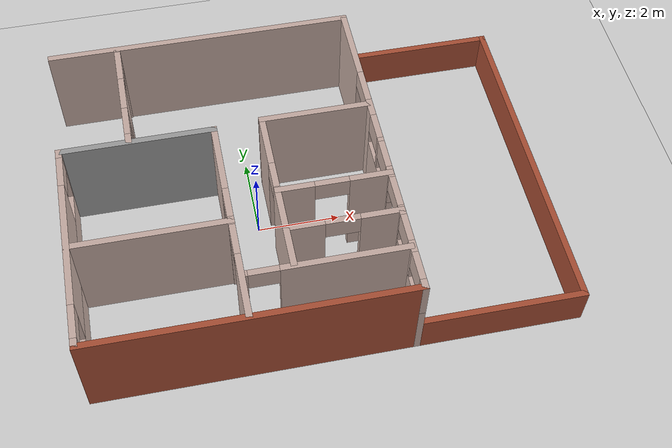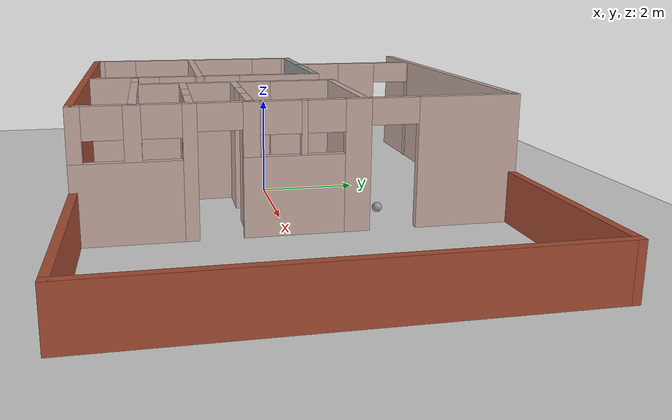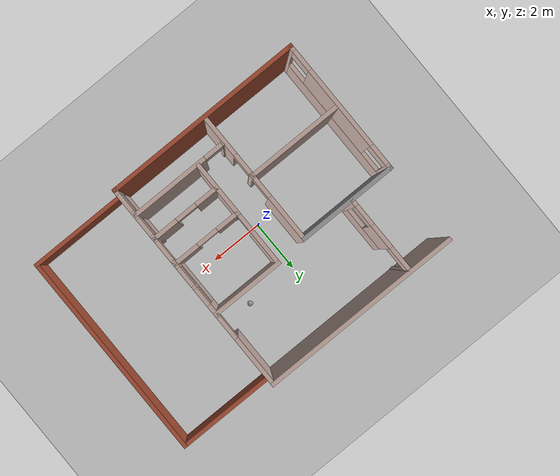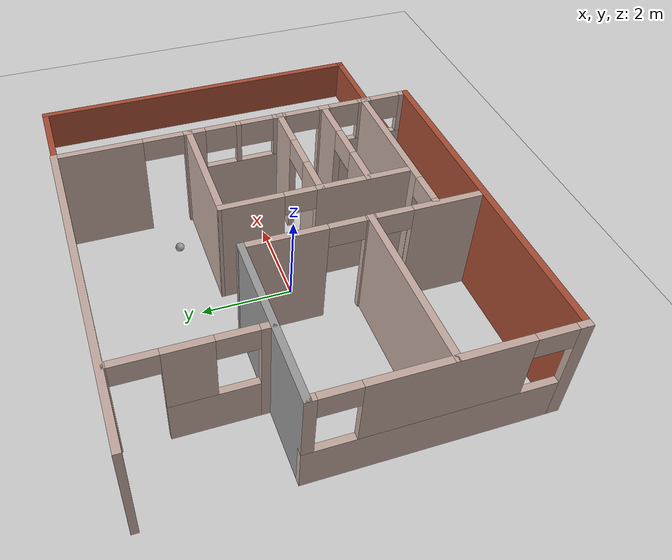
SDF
<sdf version="1.6">
 <world name="default">
  <include><uri>model://ground_plane</uri></include>
  <include><uri>model://sun</uri></include>
  <include><uri>model://Building</uri></include>
  <include><pose>2.0 2.0 0.1 0 0 0</pose><uri>model://ball</uri></include>
 </world>
</sdf>

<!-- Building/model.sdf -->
<sdf version='1.6'>
  <model name='Building'>
    <pose frame=''>1.24591 0.271 0 0 -0 0</pose>

    <link name='Wall_52'>
      <collision name='Wall_52_Collision'>
        <geometry>
          <box>
            <size>7.5 0.15 2.5</size>
          </box>
        </geometry>
        <pose frame=''>0 0 1.25 0 -0 0</pose>
      </collision>
      <visual name='Wall_52_Visual'>
        <pose frame=''>0 0 1.25 0 -0 0</pose>
        <geometry>
          <box>
            <size>7.5 0.15 2.5</size>
          </box>
        </geometry>
        <material>
          <script>
            <uri>file://media/materials/scripts/gazebo.material</uri>
            <name>Gazebo/Grey</name>
          </script>
          <ambient>0.760784 0.662745 0.627451 1</ambient>
        </material>
      </visual>
      <pose frame=''>-1.925 4.05 0 0 -0 0</pose>
    </link>
    <link name='Wall_53'>
      <pose frame=''>1.75009 0 0 0 0 -1.5708</pose>
      <visual name='Wall_53_Visual_0'>
        <pose frame=''>-3.1376 0 1.25 0 -0 0</pose>
        <geometry>
          <box>
            <size>1.9748 0.15 2.5</size>
          </box>
        </geometry>
        <material>
          <script>
            <uri>file://media/materials/scripts/gazebo.material</uri>
            <name>Gazebo/Grey</name>
          </script>
          <ambient>0.760784 0.662745 0.627451 1</ambient>
        </material>
      </visual>
      <collision name='Wall_53_Collision_0'>
        <geometry>
          <box>
            <size>1.9748 0.15 2.5</size>
          </box>
        </geometry>
        <pose frame=''>-3.1376 0 1.25 0 -0 0</pose>
      </collision>
      <visual name='Wall_53_Visual_1'>
        <pose frame=''>-1.00489 0 1.25 0 -0 0</pose>
        <geometry>
          <box>
            <size>0.490612 0.15 2.5</size>
          </box>
        </geometry>
        <material>
          <script>
            <uri>file://media/materials/scripts/gazebo.material</uri>
            <name>Gazebo/Grey</name>
          </script>
          <ambient>0.760784 0.662745 0.627451 1</ambient>
        </material>
      </visual>
      <collision name='Wall_53_Collision_1'>
        <geometry>
          <box>
            <size>0.490612 0.15 2.5</size>
          </box>
        </geometry>
        <pose frame=''>-1.00489 0 1.25 0 -0 0</pose>
      </collision>
      <visual name='Wall_53_Visual_2'>
        <pose frame=''>2.03288 0 1.25 0 -0 0</pose>
        <geometry>
          <box>
            <size>0.255222 0.15 2.5</size>
          </box>
        </geometry>
        <material>
          <script>
            <uri>file://media/materials/scripts/gazebo.material</uri>
            <name>Gazebo/Grey</name>
          </script>
          <ambient>0.760784 0.662745 0.627451 1</ambient>
        </material>
      </visual>
      <collision name='Wall_53_Collision_2'>
        <geometry>
          <box>
            <size>0.255222 0.15 2.5</size>
          </box>
        </geometry>
        <pose frame=''>2.03288 0 1.25 0 -0 0</pose>
      </collision>
      <visual name='Wall_53_Visual_3'>
        <pose frame=''>0.172843 0 0.75 0 -0 0</pose>
        <geometry>
          <box>
            <size>1.86486 0.15 1.5</size>
          </box>
        </geometry>
        <material>
          <script>
            <uri>file://media/materials/scripts/gazebo.material</uri>
            <name>Gazebo/Grey</name>
          </script>
          <ambient>0.760784 0.662745 0.627451 1</ambient>
        </material>
      </visual>
      <collision name='Wall_53_Collision_3'>
        <geometry>
          <box>
            <size>1.86486 0.15 1.5</size>
          </box>
        </geometry>
        <pose frame=''>0.172843 0 0.75 0 -0 0</pose>
      </collision>
      <visual name='Wall_53_Visual_4'>
        <pose frame=''>3.14275 0 0.75 0 -0 0</pose>
        <geometry>
          <box>
            <size>1.96451 0.15 1.5</size>
          </box>
        </geometry>
        <material>
          <script>
            <uri>file://media/materials/scripts/gazebo.material</uri>
            <name>Gazebo/Grey</name>
          </script>
          <ambient>0.760784 0.662745 0.627451 1</ambient>
        </material>
      </visual>
      <collision name='Wall_53_Collision_4'>
        <geometry>
          <box>
            <size>1.96451 0.15 1.5</size>
          </box>
        </geometry>
        <pose frame=''>3.14275 0 0.75 0 -0 0</pose>
      </collision>
      <visual name='Wall_53_Visual_5'>
        <pose frame=''>-0.003846 0 2 0 -0 0</pose>
        <geometry>
          <box>
            <size>0.111481 0.15 1</size>
          </box>
        </geometry>
        <material>
          <script>
            <uri>file://media/materials/scripts/gazebo.material</uri>
            <name>Gazebo/Grey</name>
          </script>
          <ambient>0.760784 0.662745 0.627451 1</ambient>
        </material>
      </visual>
      <collision name='Wall_53_Collision_5'>
        <geometry>
          <box>
            <size>0.111481 0.15 1</size>
          </box>
        </geometry>
        <pose frame=''>-0.003846 0 2 0 -0 0</pose>
      </collision>
      <visual name='Wall_53_Visual_6'>
        <pose frame=''>0.953584 0 2 0 -0 0</pose>
        <geometry>
          <box>
            <size>0.303377 0.15 1</size>
          </box>
        </geometry>
        <material>
          <script>
            <uri>file://media/materials/scripts/gazebo.material</uri>
            <name>Gazebo/Grey</name>
          </script>
          <ambient>0.760784 0.662745 0.627451 1</ambient>
        </material>
      </visual>
      <collision name='Wall_53_Collision_6'>
        <geometry>
          <box>
            <size>0.303377 0.15 1</size>
          </box>
        </geometry>
        <pose frame=''>0.953584 0 2 0 -0 0</pose>
      </collision>
      <visual name='Wall_53_Visual_7'>
        <pose frame=''>0.953584 0 2 0 -0 0</pose>
        <geometry>
          <box>
            <size>0.303377 0.15 1</size>
          </box>
        </geometry>
        <material>
          <script>
            <uri>file://media/materials/scripts/gazebo.material</uri>
            <name>Gazebo/Grey</name>
          </script>
          <ambient>0.760784 0.662745 0.627451 1</ambient>
        </material>
      </visual>
      <collision name='Wall_53_Collision_7'>
        <geometry>
          <box>
            <size>0.303377 0.15 1</size>
          </box>
        </geometry>
        <pose frame=''>0.953584 0 2 0 -0 0</pose>
      </collision>
      <visual name='Wall_53_Visual_8'>
        <pose frame=''>3.01238 0 2 0 -0 0</pose>
        <geometry>
          <box>
            <size>0.303778 0.15 1</size>
          </box>
        </geometry>
        <material>
          <script>
            <uri>file://media/materials/scripts/gazebo.material</uri>
            <name>Gazebo/Grey</name>
          </script>
          <ambient>0.760784 0.662745 0.627451 1</ambient>
        </material>
      </visual>
      <collision name='Wall_53_Collision_8'>
        <geometry>
          <box>
            <size>0.303778 0.15 1</size>
          </box>
        </geometry>
        <pose frame=''>3.01238 0 2 0 -0 0</pose>
      </collision>
      <visual name='Wall_53_Visual_9'>
        <pose frame=''>3.99464 0 2 0 -0 0</pose>
        <geometry>
          <box>
            <size>0.260729 0.15 1</size>
          </box>
        </geometry>
        <material>
          <script>
            <uri>file://media/materials/scripts/gazebo.material</uri>
            <name>Gazebo/Grey</name>
          </script>
          <ambient>0.760784 0.662745 0.627451 1</ambient>
        </material>
      </visual>
      <collision name='Wall_53_Collision_9'>
        <geometry>
          <box>
            <size>0.260729 0.15 1</size>
          </box>
        </geometry>
        <pose frame=''>3.99464 0 2 0 -0 0</pose>
      </collision>
      <visual name='Wall_53_Visual_10'>
        <pose frame=''>-0.409586 0 2.2 0 -0 0</pose>
        <geometry>
          <box>
            <size>0.7 0.15 0.6</size>
          </box>
        </geometry>
        <material>
          <script>
            <uri>file://media/materials/scripts/gazebo.material</uri>
            <name>Gazebo/Grey</name>
          </script>
          <ambient>0.760784 0.662745 0.627451 1</ambient>
        </material>
      </visual>
      <collision name='Wall_53_Collision_10'>
        <geometry>
          <box>
            <size>0.7 0.15 0.6</size>
          </box>
        </geometry>
        <pose frame=''>-0.409586 0 2.2 0 -0 0</pose>
      </collision>
      <visual name='Wall_53_Visual_11'>
        <pose frame=''>2.51049 0 2.2 0 -0 0</pose>
        <geometry>
          <box>
            <size>0.7 0.15 0.6</size>
          </box>
        </geometry>
        <material>
          <script>
            <uri>file://media/materials/scripts/gazebo.material</uri>
            <name>Gazebo/Grey</name>
          </script>
          <ambient>0.760784 0.662745 0.627451 1</ambient>
        </material>
      </visual>
      <collision name='Wall_53_Collision_11'>
        <geometry>
          <box>
            <size>0.7 0.15 0.6</size>
          </box>
        </geometry>
        <pose frame=''>2.51049 0 2.2 0 -0 0</pose>
      </collision>
      <visual name='Wall_53_Visual_12'>
        <pose frame=''>0.426895 0 2.2 0 -0 0</pose>
        <geometry>
          <box>
            <size>0.75 0.15 0.6</size>
          </box>
        </geometry>
        <material>
          <script>
            <uri>file://media/materials/scripts/gazebo.material</uri>
            <name>Gazebo/Grey</name>
          </script>
          <ambient>0.760784 0.662745 0.627451 1</ambient>
        </material>
      </visual>
      <collision name='Wall_53_Collision_12'>
        <geometry>
          <box>
            <size>0.75 0.15 0.6</size>
          </box>
        </geometry>
        <pose frame=''>0.426895 0 2.2 0 -0 0</pose>
      </collision>
      <visual name='Wall_53_Visual_13'>
        <pose frame=''>3.51427 0 2.2 0 -0 0</pose>
        <geometry>
          <box>
            <size>0.7 0.15 0.6</size>
          </box>
        </geometry>
        <material>
          <script>
            <uri>file://media/materials/scripts/gazebo.material</uri>
            <name>Gazebo/Grey</name>
          </script>
          <ambient>0.760784 0.662745 0.627451 1</ambient>
        </material>
      </visual>
      <collision name='Wall_53_Collision_13'>
        <geometry>
          <box>
            <size>0.7 0.15 0.6</size>
          </box>
        </geometry>
        <pose frame=''>3.51427 0 2.2 0 -0 0</pose>
      </collision>
      <visual name='Wall_53_Visual_14'>
        <pose frame=''>-1.7002 0 2.25 0 -0 0</pose>
        <geometry>
          <box>
            <size>0.9 0.15 0.5</size>
          </box>
        </geometry>
        <material>
          <script>
            <uri>file://media/materials/scripts/gazebo.material</uri>
            <name>Gazebo/Grey</name>
          </script>
          <ambient>0.760784 0.662745 0.627451 1</ambient>
        </material>
      </visual>
      <collision name='Wall_53_Collision_14'>
        <geometry>
          <box>
            <size>0.9 0.15 0.5</size>
          </box>
        </geometry>
        <pose frame=''>-1.7002 0 2.25 0 -0 0</pose>
      </collision>
      <visual name='Wall_53_Visual_15'>
        <pose frame=''>1.50527 0 2.25 0 -0 0</pose>
        <geometry>
          <box>
            <size>0.8 0.15 0.5</size>
          </box>
        </geometry>
        <material>
          <script>
            <uri>file://media/materials/scripts/gazebo.material</uri>
            <name>Gazebo/Grey</name>
          </script>
          <ambient>0.760784 0.662745 0.627451 1</ambient>
        </material>
      </visual>
      <collision name='Wall_53_Collision_15'>
        <geometry>
          <box>
            <size>0.8 0.15 0.5</size>
          </box>
        </geometry>
        <pose frame=''>1.50527 0 2.25 0 -0 0</pose>
      </collision>
      <visual name='Wall_53_Visual_16'>
        <pose frame=''>1.50527 0 2.25 0 -0 0</pose>
        <geometry>
          <box>
            <size>0.8 0.15 0.5</size>
          </box>
        </geometry>
        <material>
          <script>
            <uri>file://media/materials/scripts/gazebo.material</uri>
            <name>Gazebo/Grey</name>
          </script>
          <ambient>0.760784 0.662745 0.627451 1</ambient>
        </material>
      </visual>
      <collision name='Wall_53_Collision_16'>
        <geometry>
          <box>
            <size>0.8 0.15 0.5</size>
          </box>
        </geometry>
        <pose frame=''>1.50527 0 2.25 0 -0 0</pose>
      </collision>
    </link>
    <link name='Wall_54'>
      <collision name='Wall_54_Collision'>
        <geometry>
          <box>
            <size>7.5 0.15 2.5</size>
          </box>
        </geometry>
        <pose frame=''>0 0 1.25 0 -0 0</pose>
      </collision>
      <visual name='Wall_54_Visual'>
        <pose frame=''>0 0 1.25 0 -0 0</pose>
        <geometry>
          <box>
            <size>7.5 0.15 2.5</size>
          </box>
        </geometry>
        <material>
          <script>
            <uri>file://media/materials/scripts/gazebo.material</uri>
            <name>Gazebo/Bricks</name>
          </script>
          <ambient>1 1 1 1</ambient>
        </material>
      </visual>
      <pose frame=''>-1.925 -4.05 0 0 0 -3.14159</pose>
    </link>
    <link name='Wall_55'>
      <pose frame=''>-5.60009 -1.5 0 0 -0 1.5708</pose>
      <visual name='Wall_55_Visual_0'>
        <pose frame=''>-2.48922 0 1.25 0 -0 0</pose>
        <geometry>
          <box>
            <size>0.271564 0.15 2.5</size>
          </box>
        </geometry>
        <material>
          <script>
            <uri>file://media/materials/scripts/gazebo.material</uri>
            <name>Gazebo/Grey</name>
          </script>
          <ambient>0.760784 0.662745 0.627451 1</ambient>
        </material>
      </visual>
      <collision name='Wall_55_Collision_0'>
        <geometry>
          <box>
            <size>0.271564 0.15 2.5</size>
          </box>
        </geometry>
        <pose frame=''>-2.48922 0 1.25 0 -0 0</pose>
      </collision>
      <visual name='Wall_55_Visual_1'>
        <pose frame=''>0.135782 0 0.5 0 -0 0</pose>
        <geometry>
          <box>
            <size>4.97844 0.15 1</size>
          </box>
        </geometry>
        <material>
          <script>
            <uri>file://media/materials/scripts/gazebo.material</uri>
            <name>Gazebo/Grey</name>
          </script>
          <ambient>0.760784 0.662745 0.627451 1</ambient>
        </material>
      </visual>
      <collision name='Wall_55_Collision_1'>
        <geometry>
          <box>
            <size>4.97844 0.15 1</size>
          </box>
        </geometry>
        <pose frame=''>0.135782 0 0.5 0 -0 0</pose>
      </collision>
      <visual name='Wall_55_Visual_2'>
        <pose frame=''>0.016097 0 1.75 0 -0 0</pose>
        <geometry>
          <box>
            <size>3.13907 0.15 1.5</size>
          </box>
        </geometry>
        <material>
          <script>
            <uri>file://media/materials/scripts/gazebo.material</uri>
            <name>Gazebo/Grey</name>
          </script>
          <ambient>0.760784 0.662745 0.627451 1</ambient>
        </material>
      </visual>
      <collision name='Wall_55_Collision_2'>
        <geometry>
          <box>
            <size>3.13907 0.15 1.5</size>
          </box>
        </geometry>
        <pose frame=''>0.016097 0 1.75 0 -0 0</pose>
      </collision>
      <visual name='Wall_55_Visual_3'>
        <pose frame=''>2.50531 0 1.75 0 -0 0</pose>
        <geometry>
          <box>
            <size>0.23937 0.15 1.5</size>
          </box>
        </geometry>
        <material>
          <script>
            <uri>file://media/materials/scripts/gazebo.material</uri>
            <name>Gazebo/Grey</name>
          </script>
          <ambient>0.760784 0.662745 0.627451 1</ambient>
        </material>
      </visual>
      <collision name='Wall_55_Collision_3'>
        <geometry>
          <box>
            <size>0.23937 0.15 1.5</size>
          </box>
        </geometry>
        <pose frame=''>2.50531 0 1.75 0 -0 0</pose>
      </collision>
      <visual name='Wall_55_Visual_4'>
        <pose frame=''>-1.95344 0 2.25 0 -0 0</pose>
        <geometry>
          <box>
            <size>0.8 0.15 0.5</size>
          </box>
        </geometry>
        <material>
          <script>
            <uri>file://media/materials/scripts/gazebo.material</uri>
            <name>Gazebo/Grey</name>
          </script>
          <ambient>0.760784 0.662745 0.627451 1</ambient>
        </material>
      </visual>
      <collision name='Wall_55_Collision_4'>
        <geometry>
          <box>
            <size>0.8 0.15 0.5</size>
          </box>
        </geometry>
        <pose frame=''>-1.95344 0 2.25 0 -0 0</pose>
      </collision>
      <visual name='Wall_55_Visual_5'>
        <pose frame=''>1.98563 0 2.25 0 -0 0</pose>
        <geometry>
          <box>
            <size>0.8 0.15 0.5</size>
          </box>
        </geometry>
        <material>
          <script>
            <uri>file://media/materials/scripts/gazebo.material</uri>
            <name>Gazebo/Grey</name>
          </script>
          <ambient>0.760784 0.662745 0.627451 1</ambient>
        </material>
      </visual>
      <collision name='Wall_55_Collision_5'>
        <geometry>
          <box>
            <size>0.8 0.15 0.5</size>
          </box>
        </geometry>
        <pose frame=''>1.98563 0 2.25 0 -0 0</pose>
      </collision>
    </link>
    <link name='Wall_56'>
      <collision name='Wall_56_Collision'>
        <geometry>
          <box>
            <size>3.75 0.15 2.5</size>
          </box>
        </geometry>
        <pose frame=''>0 0 1.25 0 -0 0</pose>
      </collision>
      <visual name='Wall_56_Visual'>
        <pose frame=''>0 0 1.25 0 -0 0</pose>
        <geometry>
          <box>
            <size>3.75 0.15 2.5</size>
          </box>
        </geometry>
        <material>
          <script>
            <uri>file://media/materials/scripts/gazebo.material</uri>
            <name>Gazebo/Grey</name>
          </script>
          <ambient>0.301961 0.301961 0.301961 1</ambient>
        </material>
      </visual>
      <pose frame=''>-3.80009 1.05 0 0 -0 0</pose>
    </link>
    <link name='Wall_57'>
      <pose frame=''>-2.00009 -1.5 0 0 0 -1.5708</pose>
      <visual name='Wall_57_Visual_0'>
        <pose frame=''>-1.712 0 1.25 0 -0 0</pose>
        <geometry>
          <box>
            <size>1.826 0.15 2.5</size>
          </box>
        </geometry>
        <material>
          <script>
            <uri>file://media/materials/scripts/gazebo.material</uri>
            <name>Gazebo/Grey</name>
          </script>
          <ambient>0.760784 0.662745 0.627451 1</ambient>
        </material>
      </visual>
      <collision name='Wall_57_Collision_0'>
        <geometry>
          <box>
            <size>1.826 0.15 2.5</size>
          </box>
        </geometry>
        <pose frame=''>-1.712 0 1.25 0 -0 0</pose>
      </collision>
      <visual name='Wall_57_Visual_1'>
        <pose frame=''>0.088673 0 1.25 0 -0 0</pose>
        <geometry>
          <box>
            <size>0.215346 0.15 2.5</size>
          </box>
        </geometry>
        <material>
          <script>
            <uri>file://media/materials/scripts/gazebo.material</uri>
            <name>Gazebo/Grey</name>
          </script>
          <ambient>0.760784 0.662745 0.627451 1</ambient>
        </material>
      </visual>
      <collision name='Wall_57_Collision_1'>
        <geometry>
          <box>
            <size>0.215346 0.15 2.5</size>
          </box>
        </geometry>
        <pose frame=''>0.088673 0 1.25 0 -0 0</pose>
      </collision>
      <visual name='Wall_57_Visual_2'>
        <pose frame=''>1.80067 0 1.25 0 -0 0</pose>
        <geometry>
          <box>
            <size>1.64865 0.15 2.5</size>
          </box>
        </geometry>
        <material>
          <script>
            <uri>file://media/materials/scripts/gazebo.material</uri>
            <name>Gazebo/Grey</name>
          </script>
          <ambient>0.760784 0.662745 0.627451 1</ambient>
        </material>
      </visual>
      <collision name='Wall_57_Collision_2'>
        <geometry>
          <box>
            <size>1.64865 0.15 2.5</size>
          </box>
        </geometry>
        <pose frame=''>1.80067 0 1.25 0 -0 0</pose>
      </collision>
      <visual name='Wall_57_Visual_3'>
        <pose frame=''>-0.409001 0 2.25 0 -0 0</pose>
        <geometry>
          <box>
            <size>0.78 0.15 0.5</size>
          </box>
        </geometry>
        <material>
          <script>
            <uri>file://media/materials/scripts/gazebo.material</uri>
            <name>Gazebo/Grey</name>
          </script>
          <ambient>0.760784 0.662745 0.627451 1</ambient>
        </material>
      </visual>
      <collision name='Wall_57_Collision_3'>
        <geometry>
          <box>
            <size>0.78 0.15 0.5</size>
          </box>
        </geometry>
        <pose frame=''>-0.409001 0 2.25 0 -0 0</pose>
      </collision>
      <visual name='Wall_57_Visual_4'>
        <pose frame=''>0.586346 0 2.25 0 -0 0</pose>
        <geometry>
          <box>
            <size>0.78 0.15 0.5</size>
          </box>
        </geometry>
        <material>
          <script>
            <uri>file://media/materials/scripts/gazebo.material</uri>
            <name>Gazebo/Grey</name>
          </script>
          <ambient>0.760784 0.662745 0.627451 1</ambient>
        </material>
      </visual>
      <collision name='Wall_57_Collision_4'>
        <geometry>
          <box>
            <size>0.78 0.15 0.5</size>
          </box>
        </geometry>
        <pose frame=''>0.586346 0 2.25 0 -0 0</pose>
      </collision>
    </link>
    <link name='Wall_59'>
      <collision name='Wall_59_Collision'>
        <geometry>
          <box>
            <size>2.75 0.15 2.5</size>
          </box>
        </geometry>
        <pose frame=''>0 0 1.25 0 -0 0</pose>
      </collision>
      <visual name='Wall_59_Visual'>
        <pose frame=''>0 0 1.25 0 -0 0</pose>
        <geometry>
          <box>
            <size>2.75 0.15 2.5</size>
          </box>
        </geometry>
        <material>
          <script>
            <uri>file://media/materials/scripts/gazebo.material</uri>
            <name>Gazebo/Grey</name>
          </script>
          <ambient>0.760784 0.662745 0.627451 1</ambient>
        </material>
      </visual>
      <pose frame=''>0.448326 1.12696 0 0 -0 3.14159</pose>
    </link>
    <link name='Wall_60'>
      <pose frame=''>-0.855099 -0.904756 0 0 0 -1.57248</pose>
      <visual name='Wall_60_Visual_0'>
        <pose frame=''>-1.40981 0 1.25 0 -0 0</pose>
        <geometry>
          <box>
            <size>1.39382 0.15 2.5</size>
          </box>
        </geometry>
        <material>
          <script>
            <uri>file://media/materials/scripts/gazebo.material</uri>
            <name>Gazebo/Grey</name>
          </script>
          <ambient>0.760784 0.662745 0.627451 1</ambient>
        </material>
      </visual>
      <collision name='Wall_60_Collision_0'>
        <geometry>
          <box>
            <size>1.39382 0.15 2.5</size>
          </box>
        </geometry>
        <pose frame=''>-1.40981 0 1.25 0 -0 0</pose>
      </collision>
      <visual name='Wall_60_Visual_1'>
        <pose frame=''>1.03691 0 1.25 0 -0 0</pose>
        <geometry>
          <box>
            <size>2.13961 0.15 2.5</size>
          </box>
        </geometry>
        <material>
          <script>
            <uri>file://media/materials/scripts/gazebo.material</uri>
            <name>Gazebo/Grey</name>
          </script>
          <ambient>0.760784 0.662745 0.627451 1</ambient>
        </material>
      </visual>
      <collision name='Wall_60_Collision_1'>
        <geometry>
          <box>
            <size>2.13961 0.15 2.5</size>
          </box>
        </geometry>
        <pose frame=''>1.03691 0 1.25 0 -0 0</pose>
      </collision>
      <visual name='Wall_60_Visual_2'>
        <pose frame=''>-0.372897 0 2.25 0 -0 0</pose>
        <geometry>
          <box>
            <size>0.68 0.15 0.5</size>
          </box>
        </geometry>
        <material>
          <script>
            <uri>file://media/materials/scripts/gazebo.material</uri>
            <name>Gazebo/Grey</name>
          </script>
          <ambient>0.760784 0.662745 0.627451 1</ambient>
        </material>
      </visual>
      <collision name='Wall_60_Collision_2'>
        <geometry>
          <box>
            <size>0.68 0.15 0.5</size>
          </box>
        </geometry>
        <pose frame=''>-0.372897 0 2.25 0 -0 0</pose>
      </collision>
    </link>
    <link name='Wall_63'>
      <collision name='Wall_63_Collision'>
        <geometry>
          <box>
            <size>3.75 0.15 2.5</size>
          </box>
        </geometry>
        <pose frame=''>0 0 1.25 0 -0 0</pose>
      </collision>
      <visual name='Wall_63_Visual'>
        <pose frame=''>0 0 1.25 0 -0 0</pose>
        <geometry>
          <box>
            <size>3.75 0.15 2.5</size>
          </box>
        </geometry>
        <material>
          <script>
            <uri>file://media/materials/scripts/gazebo.material</uri>
            <name>Gazebo/Grey</name>
          </script>
          <ambient>0.760784 0.662745 0.627451 1</ambient>
        </material>
      </visual>
      <pose frame=''>-3.7973 -1.59286 0 0 -0 0</pose>
    </link>
    <link name='Wall_65'>
      <pose frame=''>-3.98941 2.51831 0 0 -0 1.5708</pose>
      <visual name='Wall_65_Visual_0'>
        <pose frame=''>-1.35934 0 1.25 0 -0 0</pose>
        <geometry>
          <box>
            <size>0.281326 0.15 2.5</size>
          </box>
        </geometry>
        <material>
          <script>
            <uri>file://media/materials/scripts/gazebo.material</uri>
            <name>Gazebo/Grey</name>
          </script>
          <ambient>0.760784 0.662745 0.627451 1</ambient>
        </material>
      </visual>
      <collision name='Wall_65_Collision_0'>
        <geometry>
          <box>
            <size>0.281326 0.15 2.5</size>
          </box>
        </geometry>
        <pose frame=''>-1.35934 0 1.25 0 -0 0</pose>
      </collision>
      <visual name='Wall_65_Visual_1'>
        <pose frame=''>1.46587 0 1.25 0 -0 0</pose>
        <geometry>
          <box>
            <size>0.068268 0.15 2.5</size>
          </box>
        </geometry>
        <material>
          <script>
            <uri>file://media/materials/scripts/gazebo.material</uri>
            <name>Gazebo/Grey</name>
          </script>
          <ambient>0.760784 0.662745 0.627451 1</ambient>
        </material>
      </visual>
      <collision name='Wall_65_Collision_1'>
        <geometry>
          <box>
            <size>0.068268 0.15 2.5</size>
          </box>
        </geometry>
        <pose frame=''>1.46587 0 1.25 0 -0 0</pose>
      </collision>
      <visual name='Wall_65_Visual_2'>
        <pose frame=''>-0.343471 0 0.5 0 -0 0</pose>
        <geometry>
          <box>
            <size>1.75041 0.15 1</size>
          </box>
        </geometry>
        <material>
          <script>
            <uri>file://media/materials/scripts/gazebo.material</uri>
            <name>Gazebo/Grey</name>
          </script>
          <ambient>0.760784 0.662745 0.627451 1</ambient>
        </material>
      </visual>
      <collision name='Wall_65_Collision_2'>
        <geometry>
          <box>
            <size>1.75041 0.15 1</size>
          </box>
        </geometry>
        <pose frame=''>-0.343471 0 0.5 0 -0 0</pose>
      </collision>
      <visual name='Wall_65_Visual_3'>
        <pose frame=''>0.056529 0 1.75 0 -0 0</pose>
        <geometry>
          <box>
            <size>0.950406 0.15 1.5</size>
          </box>
        </geometry>
        <material>
          <script>
            <uri>file://media/materials/scripts/gazebo.material</uri>
            <name>Gazebo/Grey</name>
          </script>
          <ambient>0.760784 0.662745 0.627451 1</ambient>
        </material>
      </visual>
      <collision name='Wall_65_Collision_3'>
        <geometry>
          <box>
            <size>0.950406 0.15 1.5</size>
          </box>
        </geometry>
        <pose frame=''>0.056529 0 1.75 0 -0 0</pose>
      </collision>
      <visual name='Wall_65_Visual_4'>
        <pose frame=''>-0.818674 0 2.25 0 -0 0</pose>
        <geometry>
          <box>
            <size>0.8 0.15 0.5</size>
          </box>
        </geometry>
        <material>
          <script>
            <uri>file://media/materials/scripts/gazebo.material</uri>
            <name>Gazebo/Grey</name>
          </script>
          <ambient>0.760784 0.662745 0.627451 1</ambient>
        </material>
      </visual>
      <collision name='Wall_65_Collision_4'>
        <geometry>
          <box>
            <size>0.8 0.15 0.5</size>
          </box>
        </geometry>
        <pose frame=''>-0.818674 0 2.25 0 -0 0</pose>
      </collision>
      <visual name='Wall_65_Visual_5'>
        <pose frame=''>0.981732 0 2.25 0 -0 0</pose>
        <geometry>
          <box>
            <size>0.9 0.15 0.5</size>
          </box>
        </geometry>
        <material>
          <script>
            <uri>file://media/materials/scripts/gazebo.material</uri>
            <name>Gazebo/Grey</name>
          </script>
          <ambient>0.760784 0.662745 0.627451 1</ambient>
        </material>
      </visual>
      <collision name='Wall_65_Collision_5'>
        <geometry>
          <box>
            <size>0.9 0.15 0.5</size>
          </box>
        </geometry>
        <pose frame=''>0.981732 0 2.25 0 -0 0</pose>
      </collision>
    </link>
    <link name='Wall_67'>
      <pose frame=''>0.445899 -0.970716 0 0 -0 0</pose>
      <visual name='Wall_67_Visual_0'>
        <pose frame=''>-0.912256 0 1.25 0 -0 0</pose>
        <geometry>
          <box>
            <size>0.925488 0.15 2.5</size>
          </box>
        </geometry>
        <material>
          <script>
            <uri>file://media/materials/scripts/gazebo.material</uri>
            <name>Gazebo/Grey</name>
          </script>
          <ambient>0.760784 0.662745 0.627451 1</ambient>
        </material>
      </visual>
      <collision name='Wall_67_Collision_0'>
        <geometry>
          <box>
            <size>0.925488 0.15 2.5</size>
          </box>
        </geometry>
        <pose frame=''>-0.912256 0 1.25 0 -0 0</pose>
      </collision>
      <visual name='Wall_67_Visual_1'>
        <pose frame=''>0.862744 0 1.25 0 -0 0</pose>
        <geometry>
          <box>
            <size>1.02451 0.15 2.5</size>
          </box>
        </geometry>
        <material>
          <script>
            <uri>file://media/materials/scripts/gazebo.material</uri>
            <name>Gazebo/Grey</name>
          </script>
          <ambient>0.760784 0.662745 0.627451 1</ambient>
        </material>
      </visual>
      <collision name='Wall_67_Collision_1'>
        <geometry>
          <box>
            <size>1.02451 0.15 2.5</size>
          </box>
        </geometry>
        <pose frame=''>0.862744 0 1.25 0 -0 0</pose>
      </collision>
      <visual name='Wall_67_Visual_2'>
        <pose frame=''>-0.049512 0 2.25 0 -0 0</pose>
        <geometry>
          <box>
            <size>0.8 0.15 0.5</size>
          </box>
        </geometry>
        <material>
          <script>
            <uri>file://media/materials/scripts/gazebo.material</uri>
            <name>Gazebo/Grey</name>
          </script>
          <ambient>0.760784 0.662745 0.627451 1</ambient>
        </material>
      </visual>
      <collision name='Wall_67_Collision_2'>
        <geometry>
          <box>
            <size>0.8 0.15 0.5</size>
          </box>
        </geometry>
        <pose frame=''>-0.049512 0 2.25 0 -0 0</pose>
      </collision>
    </link>
    <link name='Wall_69'>
      <pose frame=''>0.448033 -2.0285 0 0 -0 3.14159</pose>
      <visual name='Wall_69_Visual_0'>
        <pose frame=''>-0.870691 0 1.25 0 -0 0</pose>
        <geometry>
          <box>
            <size>1.00862 0.15 2.5</size>
          </box>
        </geometry>
        <material>
          <script>
            <uri>file://media/materials/scripts/gazebo.material</uri>
            <name>Gazebo/Grey</name>
          </script>
          <ambient>0.760784 0.662745 0.627451 1</ambient>
        </material>
      </visual>
      <collision name='Wall_69_Collision_0'>
        <geometry>
          <box>
            <size>1.00862 0.15 2.5</size>
          </box>
        </geometry>
        <pose frame=''>-0.870691 0 1.25 0 -0 0</pose>
      </collision>
      <visual name='Wall_69_Visual_1'>
        <pose frame=''>0.904309 0 1.25 0 -0 0</pose>
        <geometry>
          <box>
            <size>0.941383 0.15 2.5</size>
          </box>
        </geometry>
        <material>
          <script>
            <uri>file://media/materials/scripts/gazebo.material</uri>
            <name>Gazebo/Grey</name>
          </script>
          <ambient>0.760784 0.662745 0.627451 1</ambient>
        </material>
      </visual>
      <collision name='Wall_69_Collision_1'>
        <geometry>
          <box>
            <size>0.941383 0.15 2.5</size>
          </box>
        </geometry>
        <pose frame=''>0.904309 0 1.25 0 -0 0</pose>
      </collision>
      <visual name='Wall_69_Visual_2'>
        <pose frame=''>0.033617 0 2.25 0 -0 0</pose>
        <geometry>
          <box>
            <size>0.8 0.15 0.5</size>
          </box>
        </geometry>
        <material>
          <script>
            <uri>file://media/materials/scripts/gazebo.material</uri>
            <name>Gazebo/Grey</name>
          </script>
          <ambient>0.760784 0.662745 0.627451 1</ambient>
        </material>
      </visual>
      <collision name='Wall_69_Collision_2'>
        <geometry>
          <box>
            <size>0.8 0.15 0.5</size>
          </box>
        </geometry>
        <pose frame=''>0.033617 0 2.25 0 -0 0</pose>
      </collision>
    </link>
    <link name='Wall_71'>
      <pose frame=''>-0.094156 -3.0056 0 0 -0 3.14159</pose>
      <visual name='Wall_71_Visual_0'>
        <pose frame=''>-0.39905 0 1.25 0 -0 0</pose>
        <geometry>
          <box>
            <size>2.9519 0.15 2.5</size>
          </box>
        </geometry>
        <material>
          <script>
            <uri>file://media/materials/scripts/gazebo.material</uri>
            <name>Gazebo/Grey</name>
          </script>
          <ambient>0.760784 0.662745 0.627451 1</ambient>
        </material>
      </visual>
      <collision name='Wall_71_Collision_0'>
        <geometry>
          <box>
            <size>2.9519 0.15 2.5</size>
          </box>
        </geometry>
        <pose frame=''>-0.39905 0 1.25 0 -0 0</pose>
      </collision>
      <visual name='Wall_71_Visual_1'>
        <pose frame=''>1.82595 0 1.25 0 -0 0</pose>
        <geometry>
          <box>
            <size>0.0981 0.15 2.5</size>
          </box>
        </geometry>
        <material>
          <script>
            <uri>file://media/materials/scripts/gazebo.material</uri>
            <name>Gazebo/Grey</name>
          </script>
          <ambient>0.760784 0.662745 0.627451 1</ambient>
        </material>
      </visual>
      <collision name='Wall_71_Collision_1'>
        <geometry>
          <box>
            <size>0.0981 0.15 2.5</size>
          </box>
        </geometry>
        <pose frame=''>1.82595 0 1.25 0 -0 0</pose>
      </collision>
      <visual name='Wall_71_Visual_2'>
        <pose frame=''>1.4269 0 2.25 0 -0 0</pose>
        <geometry>
          <box>
            <size>0.7 0.15 0.5</size>
          </box>
        </geometry>
        <material>
          <script>
            <uri>file://media/materials/scripts/gazebo.material</uri>
            <name>Gazebo/Grey</name>
          </script>
          <ambient>0.760784 0.662745 0.627451 1</ambient>
        </material>
      </visual>
      <collision name='Wall_71_Collision_2'>
        <geometry>
          <box>
            <size>0.7 0.15 0.5</size>
          </box>
        </geometry>
        <pose frame=''>1.4269 0 2.25 0 -0 0</pose>
      </collision>
    </link>
    <link name='Wall_73'>
      <collision name='Wall_73_Collision'>
        <geometry>
          <box>
            <size>4 0.15 1</size>
          </box>
        </geometry>
        <pose frame=''>0 0 0.5 0 -0 0</pose>
      </collision>
      <visual name='Wall_73_Visual'>
        <pose frame=''>0 0 0.5 0 -0 0</pose>
        <geometry>
          <box>
            <size>4 0.15 1</size>
          </box>
        </geometry>
        <material>
          <script>
            <uri>file://media/materials/scripts/gazebo.material</uri>
            <name>Gazebo/Bricks</name>
          </script>
          <ambient>1 1 1 1</ambient>
        </material>
      </visual>
      <pose frame=''>3.67509 -4.05 0 0 -0 0</pose>
    </link>
    <link name='Wall_74'>
      <collision name='Wall_74_Collision'>
        <geometry>
          <box>
            <size>8.25 0.15 1</size>
          </box>
        </geometry>
        <pose frame=''>0 0 0.5 0 -0 0</pose>
      </collision>
      <visual name='Wall_74_Visual'>
        <pose frame=''>0 0 0.5 0 -0 0</pose>
        <geometry>
          <box>
            <size>8.25 0.15 1</size>
          </box>
        </geometry>
        <material>
          <script>
            <uri>file://media/materials/scripts/gazebo.material</uri>
            <name>Gazebo/Bricks</name>
          </script>
          <ambient>1 1 1 1</ambient>
        </material>
      </visual>
      <pose frame=''>5.60009 0 0 0 -0 1.5708</pose>
    </link>
    <link name='Wall_75'>
      <collision name='Wall_75_Collision'>
        <geometry>
          <box>
            <size>4 0.15 1</size>
          </box>
        </geometry>
        <pose frame=''>0 0 0.5 0 -0 0</pose>
      </collision>
      <visual name='Wall_75_Visual'>
        <pose frame=''>0 0 0.5 0 -0 0</pose>
        <geometry>
          <box>
            <size>4 0.15 1</size>
          </box>
        </geometry>
        <material>
          <script>
            <uri>file://media/materials/scripts/gazebo.material</uri>
            <name>Gazebo/Bricks</name>
          </script>
          <ambient>1 1 1 1</ambient>
        </material>
      </visual>
      <pose frame=''>3.67509 4.05 0 0 -0 3.14159</pose>
    </link>
    <static>1</static>
  </model>
</sdf>

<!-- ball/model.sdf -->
<sdf version='1.6'>
  <model name='ball'>
    <link name='link_0'>
      <pose frame=''>0 0 0 0 -0 0</pose>
      <inertial>
        <mass>1</mass>
        <inertia>
          <ixx>0.1</ixx>
          <ixy>0</ixy>
          <ixz>0</ixz>
          <iyy>0.1</iyy>
          <iyz>0</iyz>
          <izz>0.1</izz>
        </inertia>
        <pose frame=''>0 0 0 0 -0 0</pose>
      </inertial>
      <gravity>1</gravity>
      <self_collide>0</self_collide>
      <kinematic>0</kinematic>
      <visual name='ModelPreview_0::link_0::visual_1'>
        <pose frame=''>0 0 0 0 -0 0</pose>
        <geometry>
          <sphere>
            <radius>0.1</radius>
          </sphere>
        </geometry>
        <material>
          <lighting>1</lighting>
          <script>
            <uri>file://media/materials/scripts/gazebo.material</uri>
            <name>Gazebo/Grey</name>
          </script>
          <ambient>1 1 1 1</ambient>
          <diffuse>1 1 1 1</diffuse>
          <specular>1 1 1 1</specular>
          <emissive>1 1 1 1</emissive>
          <shader type='vertex'>
            <normal_map>__default__</normal_map>
          </shader>
        </material>
        <cast_shadows>1</cast_shadows>
        <transparency>0</transparency>
      </visual>
      <visual name='visual'>
        <pose frame=''>0 0 0 0 -0 0</pose>
        <geometry>
          <sphere>
            <radius>0.1</radius>
          </sphere>
        </geometry>
        <material>
          <lighting>1</lighting>
          <script>
            <uri>file://media/materials/scripts/gazebo.material</uri>
            <name>Gazebo/White</name>
          </script>
          <ambient>1 1 1 1</ambient>
          <diffuse>1 1 1 1</diffuse>
          <specular>1 1 1 1</specular>
          <emissive>1 1 1 1</emissive>
          <shader type='vertex'>
            <normal_map>__default__</normal_map>
          </shader>
        </material>
        <cast_shadows>1</cast_shadows>
        <transparency>0</transparency>
      </visual>
      <collision name='collision'>
        <laser_retro>0</laser_retro>
        <max_contacts>10</max_contacts>
        <pose frame=''>0 0 0 0 -0 0</pose>
        <geometry>
          <sphere>
            <radius>0.1</radius>
          </sphere>
        </geometry>
        <surface>
          <friction>
            <ode>
              <mu>1</mu>
              <mu2>1</mu2>
              <fdir1>0 0 0</fdir1>
              <slip1>0</slip1>
              <slip2>0</slip2>
            </ode>
            <torsional>
              <coefficient>1</coefficient>
              <patch_radius>0</patch_radius>
              <surface_radius>0</surface_radius>
              <use_patch_radius>1</use_patch_radius>
              <ode>
                <slip>0</slip>
              </ode>
            </torsional>
          </friction>
          <bounce>
            <restitution_coefficient>0</restitution_coefficient>
            <threshold>1e+06</threshold>
          </bounce>
          <contact>
            <collide_without_contact>0</collide_without_contact>
            <collide_without_contact_bitmask>1</collide_without_contact_bitmask>
            <collide_bitmask>1</collide_bitmask>
            <ode>
              <soft_cfm>0</soft_cfm>
              <soft_erp>0.2</soft_erp>
              <kp>1e+13</kp>
              <kd>1</kd>
              <max_vel>0.01</max_vel>
              <min_depth>0</min_depth>
            </ode>
            <bullet>
              <split_impulse>1</split_impulse>
              <split_impulse_penetration_threshold>-0.01</split_impulse_penetration_threshold>
              <soft_cfm>0</soft_cfm>
              <soft_erp>0.2</soft_erp>
              <kp>1e+13</kp>
              <kd>1</kd>
            </bullet>
          </contact>
        </surface>
      </collision>
    </link>
    <static>0</static>
    <allow_auto_disable>1</allow_auto_disable>
  </model>
</sdf>
